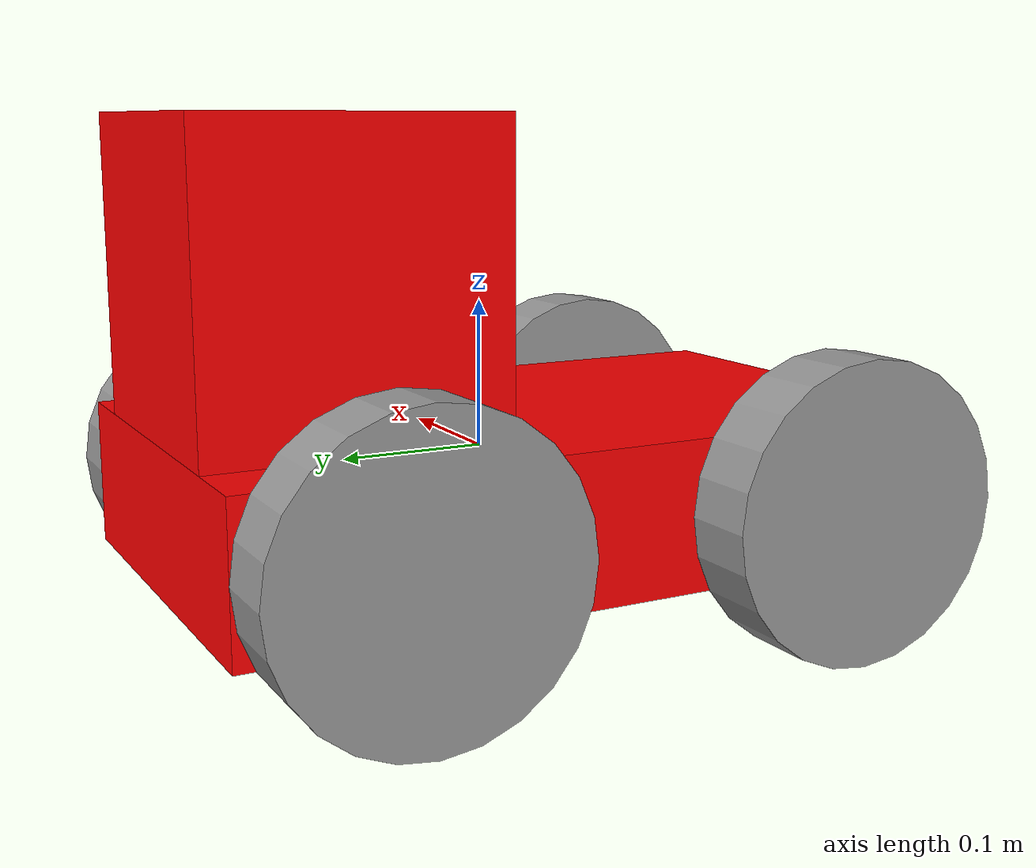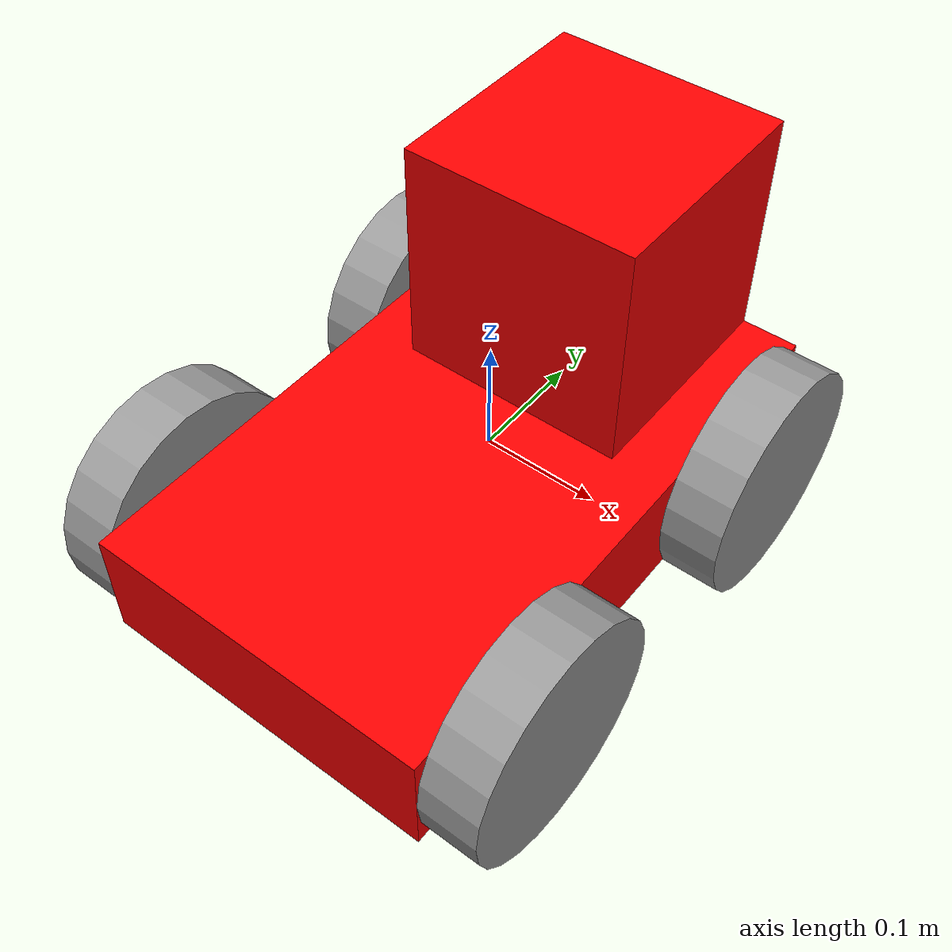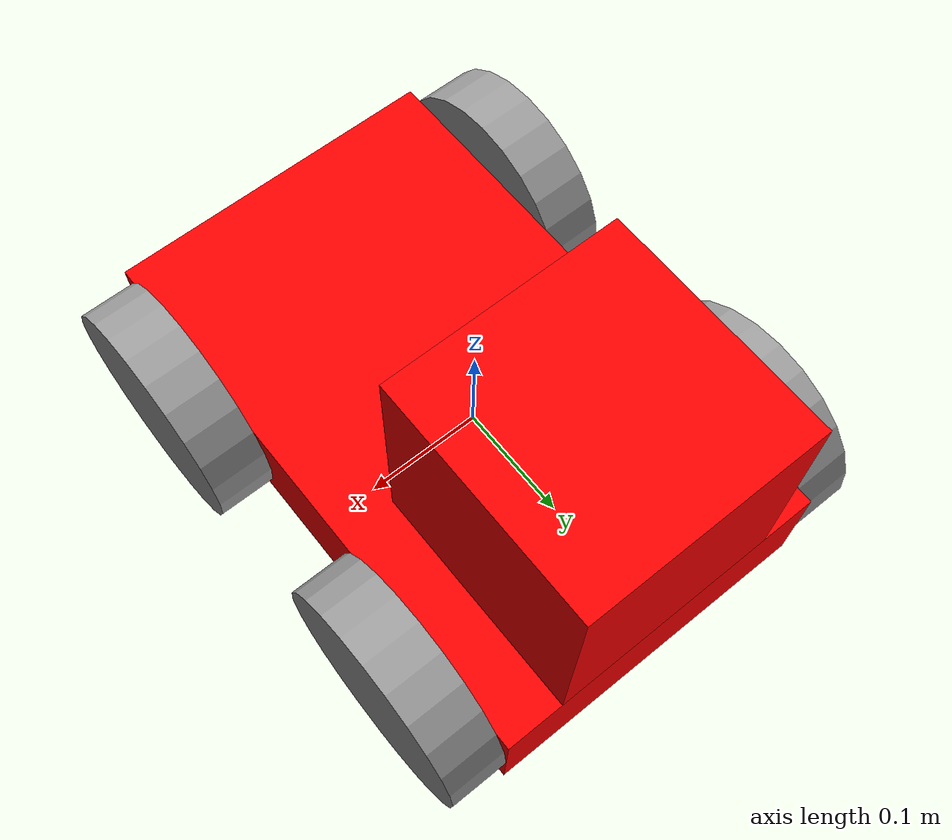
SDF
<?xml version='1.0'?>
<sdf version='1.6'>
  <model name='RobotCar'>
    <link name='link_0_clone'>
      <pose frame=''>-0 -0.025 -0.025 0 -0 0</pose>
      <inertial>
        <mass>0.5</mass>
        <inertia>
          <ixx>0.166667</ixx>
          <ixy>0</ixy>
          <ixz>0</ixz>
          <iyy>0.166667</iyy>
          <iyz>0</iyz>
          <izz>0.166667</izz>
        </inertia>
        <pose frame=''>0 0 0 0 -0 0</pose>
      </inertial>
      <self_collide>0</self_collide>
      <kinematic>0</kinematic>
      <gravity>1</gravity>
      <visual name='visual'>
        <pose frame=''>0 0 0 0 -0 0</pose>
        <geometry>
          <box>
            <size>0.3 0.5 0.1</size>
          </box>
        </geometry>
        <material>
          <lighting>1</lighting>
          <script>
            <uri>file://media/materials/scripts/gazebo.material</uri>
            <name>Gazebo/Grey</name>
          </script>
          <shader type='pixel'>
            <normal_map>__default__</normal_map>
          </shader>
          <ambient>1 0 0 1</ambient>
          <diffuse>0.7 0.7 0.7 1</diffuse>
          <specular>0.01 0.01 0.01 1</specular>
          <emissive>0 0 0 1</emissive>
        </material>
        <transparency>0</transparency>
        <cast_shadows>1</cast_shadows>
      </visual>
      <collision name='collision'>
        <laser_retro>0</laser_retro>
        <max_contacts>10</max_contacts>
        <pose frame=''>0 0 0 0 -0 0</pose>
        <geometry>
          <box>
            <size>0.3 0.5 0.1</size>
          </box>
        </geometry>
        <surface>
          <friction>
            <ode>
              <mu>1</mu>
              <mu2>1</mu2>
              <fdir1>0 0 0</fdir1>
              <slip1>0</slip1>
              <slip2>0</slip2>
            </ode>
            <torsional>
              <coefficient>1</coefficient>
              <patch_radius>0</patch_radius>
              <surface_radius>0</surface_radius>
              <use_patch_radius>1</use_patch_radius>
              <ode>
                <slip>0</slip>
              </ode>
            </torsional>
          </friction>
          <bounce>
            <restitution_coefficient>0</restitution_coefficient>
            <threshold>1e+06</threshold>
          </bounce>
          <contact>
            <collide_without_contact>0</collide_without_contact>
            <collide_without_contact_bitmask>1</collide_without_contact_bitmask>
            <collide_bitmask>1</collide_bitmask>
            <ode>
              <soft_cfm>0</soft_cfm>
              <soft_erp>0.2</soft_erp>
              <kp>1e+13</kp>
              <kd>1</kd>
              <max_vel>0.01</max_vel>
              <min_depth>0</min_depth>
            </ode>
            <bullet>
              <split_impulse>1</split_impulse>
              <split_impulse_penetration_threshold>-0.01</split_impulse_penetration_threshold>
              <soft_cfm>0</soft_cfm>
              <soft_erp>0.2</soft_erp>
              <kp>1e+13</kp>
              <kd>1</kd>
            </bullet>
          </contact>
        </surface>
      </collision>
    </link>
    <link name='link_4_clone'>
      <pose frame=''>-0.17508 0.124999 -0.025 0 -1.57 0</pose>
      <inertial>
        <mass>1</mass>
        <inertia>
          <ixx>0.145833</ixx>
          <ixy>0</ixy>
          <ixz>0</ixz>
          <iyy>0.145833</iyy>
          <iyz>0</iyz>
          <izz>0.125</izz>
        </inertia>
        <pose frame=''>0 0 0 0 -0 0</pose>
      </inertial>
      <self_collide>0</self_collide>
      <kinematic>0</kinematic>
      <visual name='visual'>
        <pose frame=''>0 0 0 0 -0 0</pose>
        <geometry>
          <cylinder>
            <radius>0.1</radius>
            <length>0.05</length>
          </cylinder>
        </geometry>
        <material>
          <lighting>1</lighting>
          <script>
            <uri>file://media/materials/scripts/gazebo.material</uri>
            <name>Gazebo/Grey</name>
          </script>
          <shader type='pixel'>
            <normal_map>__default__</normal_map>
          </shader>
          <ambient>0.3 0.3 0.3 1</ambient>
          <diffuse>0.7 0.7 0.7 1</diffuse>
          <specular>0.01 0.01 0.01 1</specular>
          <emissive>0 0 0 1</emissive>
        </material>
        <transparency>0</transparency>
        <cast_shadows>1</cast_shadows>
      </visual>
      <collision name='collision'>
        <laser_retro>0</laser_retro>
        <max_contacts>10</max_contacts>
        <pose frame=''>0 0 0 0 -0 0</pose>
        <geometry>
          <cylinder>
            <radius>0.1</radius>
            <length>0.05</length>
          </cylinder>
        </geometry>
        <surface>
          <friction>
            <ode>
              <mu>1</mu>
              <mu2>1</mu2>
              <fdir1>0 0 0</fdir1>
              <slip1>0</slip1>
              <slip2>0</slip2>
            </ode>
            <torsional>
              <coefficient>1</coefficient>
              <patch_radius>0</patch_radius>
              <surface_radius>0</surface_radius>
              <use_patch_radius>1</use_patch_radius>
              <ode>
                <slip>0</slip>
              </ode>
            </torsional>
          </friction>
          <bounce>
            <restitution_coefficient>0</restitution_coefficient>
            <threshold>1e+06</threshold>
          </bounce>
          <contact>
            <collide_without_contact>0</collide_without_contact>
            <collide_without_contact_bitmask>1</collide_without_contact_bitmask>
            <collide_bitmask>1</collide_bitmask>
            <ode>
              <soft_cfm>0</soft_cfm>
              <soft_erp>0.2</soft_erp>
              <kp>1e+13</kp>
              <kd>1</kd>
              <max_vel>0.01</max_vel>
              <min_depth>0</min_depth>
            </ode>
            <bullet>
              <split_impulse>1</split_impulse>
              <split_impulse_penetration_threshold>-0.01</split_impulse_penetration_threshold>
              <soft_cfm>0</soft_cfm>
              <soft_erp>0.2</soft_erp>
              <kp>1e+13</kp>
              <kd>1</kd>
            </bullet>
          </contact>
        </surface>
      </collision>
    </link>
    <link name='link_4_clone_clone'>
      <pose frame=''>0.17508 0.124999 -0.025 0 -1.57 0</pose>
      <inertial>
        <mass>1</mass>
        <inertia>
          <ixx>0.145833</ixx>
          <ixy>0</ixy>
          <ixz>0</ixz>
          <iyy>0.145833</iyy>
          <iyz>0</iyz>
          <izz>0.125</izz>
        </inertia>
        <pose frame=''>0 0 0 0 -0 0</pose>
      </inertial>
      <self_collide>0</self_collide>
      <kinematic>0</kinematic>
      <visual name='visual'>
        <pose frame=''>0 0 0 0 -0 0</pose>
        <geometry>
          <cylinder>
            <radius>0.1</radius>
            <length>0.05</length>
          </cylinder>
        </geometry>
        <material>
          <lighting>1</lighting>
          <script>
            <uri>file://media/materials/scripts/gazebo.material</uri>
            <name>Gazebo/Grey</name>
          </script>
          <shader type='pixel'>
            <normal_map>__default__</normal_map>
          </shader>
          <ambient>0.3 0.3 0.3 1</ambient>
          <diffuse>0.7 0.7 0.7 1</diffuse>
          <specular>0.01 0.01 0.01 1</specular>
          <emissive>0 0 0 1</emissive>
        </material>
        <transparency>0</transparency>
        <cast_shadows>1</cast_shadows>
      </visual>
      <collision name='collision'>
        <laser_retro>0</laser_retro>
        <max_contacts>10</max_contacts>
        <pose frame=''>0 0 0 0 -0 0</pose>
        <geometry>
          <cylinder>
            <radius>0.1</radius>
            <length>0.05</length>
          </cylinder>
        </geometry>
        <surface>
          <friction>
            <ode>
              <mu>1</mu>
              <mu2>1</mu2>
              <fdir1>0 0 0</fdir1>
              <slip1>0</slip1>
              <slip2>0</slip2>
            </ode>
            <torsional>
              <coefficient>1</coefficient>
              <patch_radius>0</patch_radius>
              <surface_radius>0</surface_radius>
              <use_patch_radius>1</use_patch_radius>
              <ode>
                <slip>0</slip>
              </ode>
            </torsional>
          </friction>
          <bounce>
            <restitution_coefficient>0</restitution_coefficient>
            <threshold>1e+06</threshold>
          </bounce>
          <contact>
            <collide_without_contact>0</collide_without_contact>
            <collide_without_contact_bitmask>1</collide_without_contact_bitmask>
            <collide_bitmask>1</collide_bitmask>
            <ode>
              <soft_cfm>0</soft_cfm>
              <soft_erp>0.2</soft_erp>
              <kp>1e+13</kp>
              <kd>1</kd>
              <max_vel>0.01</max_vel>
              <min_depth>0</min_depth>
            </ode>
            <bullet>
              <split_impulse>1</split_impulse>
              <split_impulse_penetration_threshold>-0.01</split_impulse_penetration_threshold>
              <soft_cfm>0</soft_cfm>
              <soft_erp>0.2</soft_erp>
              <kp>1e+13</kp>
              <kd>1</kd>
            </bullet>
          </contact>
        </surface>
      </collision>
    </link>
    <link name='link_4_clone_clone_0'>
      <pose frame=''>0.17508 -0.175 -0.025 0 -1.57 0</pose>
      <inertial>
        <mass>1</mass>
        <inertia>
          <ixx>0.145833</ixx>
          <ixy>0</ixy>
          <ixz>0</ixz>
          <iyy>0.145833</iyy>
          <iyz>0</iyz>
          <izz>0.125</izz>
        </inertia>
        <pose frame=''>0 0 0 0 -0 0</pose>
      </inertial>
      <self_collide>0</self_collide>
      <kinematic>0</kinematic>
      <visual name='visual'>
        <pose frame=''>0 0 0 0 -0 0</pose>
        <geometry>
          <cylinder>
            <radius>0.1</radius>
            <length>0.05</length>
          </cylinder>
        </geometry>
        <material>
          <lighting>1</lighting>
          <script>
            <uri>file://media/materials/scripts/gazebo.material</uri>
            <name>Gazebo/Grey</name>
          </script>
          <shader type='pixel'>
            <normal_map>__default__</normal_map>
          </shader>
          <ambient>0.3 0.3 0.3 1</ambient>
          <diffuse>0.7 0.7 0.7 1</diffuse>
          <specular>0.01 0.01 0.01 1</specular>
          <emissive>0 0 0 1</emissive>
        </material>
        <transparency>0</transparency>
        <cast_shadows>1</cast_shadows>
      </visual>
      <collision name='collision'>
        <laser_retro>0</laser_retro>
        <max_contacts>10</max_contacts>
        <pose frame=''>0 0 0 0 -0 0</pose>
        <geometry>
          <cylinder>
            <radius>0.1</radius>
            <length>0.05</length>
          </cylinder>
        </geometry>
        <surface>
          <friction>
            <ode>
              <mu>1</mu>
              <mu2>1</mu2>
              <fdir1>0 0 0</fdir1>
              <slip1>0</slip1>
              <slip2>0</slip2>
            </ode>
            <torsional>
              <coefficient>1</coefficient>
              <patch_radius>0</patch_radius>
              <surface_radius>0</surface_radius>
              <use_patch_radius>1</use_patch_radius>
              <ode>
                <slip>0</slip>
              </ode>
            </torsional>
          </friction>
          <bounce>
            <restitution_coefficient>0</restitution_coefficient>
            <threshold>1e+06</threshold>
          </bounce>
          <contact>
            <collide_without_contact>0</collide_without_contact>
            <collide_without_contact_bitmask>1</collide_without_contact_bitmask>
            <collide_bitmask>1</collide_bitmask>
            <ode>
              <soft_cfm>0</soft_cfm>
              <soft_erp>0.2</soft_erp>
              <kp>1e+13</kp>
              <kd>1</kd>
              <max_vel>0.01</max_vel>
              <min_depth>0</min_depth>
            </ode>
            <bullet>
              <split_impulse>1</split_impulse>
              <split_impulse_penetration_threshold>-0.01</split_impulse_penetration_threshold>
              <soft_cfm>0</soft_cfm>
              <soft_erp>0.2</soft_erp>
              <kp>1e+13</kp>
              <kd>1</kd>
            </bullet>
          </contact>
        </surface>
      </collision>
    </link>
    <link name='link_4_clone_clone_1'>
      <pose frame=''>-0.17508 -0.175 -0.025 0 -1.57 0</pose>
      <inertial>
        <mass>1</mass>
        <inertia>
          <ixx>0.145833</ixx>
          <ixy>0</ixy>
          <ixz>0</ixz>
          <iyy>0.145833</iyy>
          <iyz>0</iyz>
          <izz>0.125</izz>
        </inertia>
        <pose frame=''>0 0 0 0 -0 0</pose>
      </inertial>
      <self_collide>0</self_collide>
      <kinematic>0</kinematic>
      <visual name='visual'>
        <pose frame=''>0 0 0 0 -0 0</pose>
        <geometry>
          <cylinder>
            <radius>0.1</radius>
            <length>0.05</length>
          </cylinder>
        </geometry>
        <material>
          <lighting>1</lighting>
          <script>
            <uri>file://media/materials/scripts/gazebo.material</uri>
            <name>Gazebo/Grey</name>
          </script>
          <shader type='pixel'>
            <normal_map>__default__</normal_map>
          </shader>
          <ambient>0.3 0.3 0.3 1</ambient>
          <diffuse>0.7 0.7 0.7 1</diffuse>
          <specular>0.01 0.01 0.01 1</specular>
          <emissive>0 0 0 1</emissive>
        </material>
        <transparency>0</transparency>
        <cast_shadows>1</cast_shadows>
      </visual>
      <collision name='collision'>
        <laser_retro>0</laser_retro>
        <max_contacts>10</max_contacts>
        <pose frame=''>0 0 0 0 -0 0</pose>
        <geometry>
          <cylinder>
            <radius>0.1</radius>
            <length>0.05</length>
          </cylinder>
        </geometry>
        <surface>
          <friction>
            <ode>
              <mu>1</mu>
              <mu2>1</mu2>
              <fdir1>0 0 0</fdir1>
              <slip1>0</slip1>
              <slip2>0</slip2>
            </ode>
            <torsional>
              <coefficient>1</coefficient>
              <patch_radius>0</patch_radius>
              <surface_radius>0</surface_radius>
              <use_patch_radius>1</use_patch_radius>
              <ode>
                <slip>0</slip>
              </ode>
            </torsional>
          </friction>
          <bounce>
            <restitution_coefficient>0</restitution_coefficient>
            <threshold>1e+06</threshold>
          </bounce>
          <contact>
            <collide_without_contact>0</collide_without_contact>
            <collide_without_contact_bitmask>1</collide_without_contact_bitmask>
            <collide_bitmask>1</collide_bitmask>
            <ode>
              <soft_cfm>0</soft_cfm>
              <soft_erp>0.2</soft_erp>
              <kp>1e+13</kp>
              <kd>1</kd>
              <max_vel>0.01</max_vel>
              <min_depth>0</min_depth>
            </ode>
            <bullet>
              <split_impulse>1</split_impulse>
              <split_impulse_penetration_threshold>-0.01</split_impulse_penetration_threshold>
              <soft_cfm>0</soft_cfm>
              <soft_erp>0.2</soft_erp>
              <kp>1e+13</kp>
              <kd>1</kd>
            </bullet>
          </contact>
        </surface>
      </collision>
    </link>
    <link name='link_5_clone'>
      <pose frame=''>0 0.125 0.125 0 -0 0</pose>
      <inertial>
        <mass>0.2</mass>
        <inertia>
          <ixx>1</ixx>
          <ixy>0</ixy>
          <ixz>0</ixz>
          <iyy>1</iyy>
          <iyz>0</iyz>
          <izz>1</izz>
        </inertia>
        <pose frame=''>0 0 0 0 -0 0</pose>
      </inertial>
      <self_collide>0</self_collide>
      <kinematic>0</kinematic>
      <gravity>1</gravity>
      <visual name='visual'>
        <pose frame=''>0 0 0 0 -0 0</pose>
        <geometry>
          <box>
            <size>0.2 0.2 0.2</size>
          </box>
        </geometry>
        <material>
          <lighting>1</lighting>
          <script>
            <uri>file://media/materials/scripts/gazebo.material</uri>
            <name>Gazebo/Grey</name>
          </script>
          <shader type='pixel'>
            <normal_map>__default__</normal_map>
          </shader>
          <ambient>1 0 0 1</ambient>
          <diffuse>0.7 0.7 0.7 1</diffuse>
          <specular>0.01 0.01 0.01 1</specular>
          <emissive>0 0 0 1</emissive>
        </material>
        <transparency>0</transparency>
        <cast_shadows>1</cast_shadows>
      </visual>
      <collision name='collision'>
        <laser_retro>0</laser_retro>
        <max_contacts>10</max_contacts>
        <pose frame=''>0 0 0 0 -0 0</pose>
        <geometry>
          <box>
            <size>0.2 0.2 0.2</size>
          </box>
        </geometry>
        <surface>
          <friction>
            <ode>
              <mu>1</mu>
              <mu2>1</mu2>
              <fdir1>0 0 0</fdir1>
              <slip1>0</slip1>
              <slip2>0</slip2>
            </ode>
            <torsional>
              <coefficient>1</coefficient>
              <patch_radius>0</patch_radius>
              <surface_radius>0</surface_radius>
              <use_patch_radius>1</use_patch_radius>
              <ode>
                <slip>0</slip>
              </ode>
            </torsional>
          </friction>
          <bounce>
            <restitution_coefficient>0</restitution_coefficient>
            <threshold>1e+06</threshold>
          </bounce>
          <contact>
            <collide_without_contact>0</collide_without_contact>
            <collide_without_contact_bitmask>1</collide_without_contact_bitmask>
            <collide_bitmask>1</collide_bitmask>
            <ode>
              <soft_cfm>0</soft_cfm>
              <soft_erp>0.2</soft_erp>
              <kp>1e+13</kp>
              <kd>1</kd>
              <max_vel>0.01</max_vel>
              <min_depth>0</min_depth>
            </ode>
            <bullet>
              <split_impulse>1</split_impulse>
              <split_impulse_penetration_threshold>-0.01</split_impulse_penetration_threshold>
              <soft_cfm>0</soft_cfm>
              <soft_erp>0.2</soft_erp>
              <kp>1e+13</kp>
              <kd>1</kd>
            </bullet>
          </contact>
        </surface>
      </collision>
    </link>
    <joint name='link_0_clone_JOINT_10' type='revolute'>
      <parent>link_0_clone</parent>
      <child>link_4_clone_clone_0</child>
      <pose frame=''>0 0 0 0 -0 0</pose>
      <axis>
        <xyz>0 0 1</xyz>
        <use_parent_model_frame>0</use_parent_model_frame>
        <limit>
          <lower>-1.79769e+308</lower>
          <upper>1.79769e+308</upper>
          <effort>-1</effort>
          <velocity>-1</velocity>
        </limit>
        <dynamics>
          <spring_reference>0</spring_reference>
          <spring_stiffness>0</spring_stiffness>
          <damping>0</damping>
          <friction>0</friction>
        </dynamics>
      </axis>
      <physics>
        <ode>
          <limit>
            <cfm>0</cfm>
            <erp>0.2</erp>
          </limit>
          <suspension>
            <cfm>0</cfm>
            <erp>0.2</erp>
          </suspension>
        </ode>
      </physics>
    </joint>
    <joint name='link_0_clone_JOINT_11' type='fixed'>
      <parent>link_0_clone</parent>
      <child>link_5_clone</child>
      <pose frame=''>0 0 0 0 -0 0</pose>
      <physics>
        <ode>
          <limit>
            <cfm>0</cfm>
            <erp>0.2</erp>
          </limit>
          <suspension>
            <cfm>0</cfm>
            <erp>0.2</erp>
          </suspension>
        </ode>
      </physics>
    </joint>
    <joint name='link_0_clone_JOINT_7' type='revolute'>
      <parent>link_0_clone</parent>
      <child>link_4_clone_clone_1</child>
      <pose frame=''>0 0 0 0 -0 0</pose>
      <axis>
        <xyz>0 0 1</xyz>
        <use_parent_model_frame>0</use_parent_model_frame>
        <limit>
          <lower>-1.79769e+308</lower>
          <upper>1.79769e+308</upper>
          <effort>-1</effort>
          <velocity>-1</velocity>
        </limit>
        <dynamics>
          <spring_reference>0</spring_reference>
          <spring_stiffness>0</spring_stiffness>
          <damping>0</damping>
          <friction>0</friction>
        </dynamics>
      </axis>
      <physics>
        <ode>
          <limit>
            <cfm>0</cfm>
            <erp>0.2</erp>
          </limit>
          <suspension>
            <cfm>0</cfm>
            <erp>0.2</erp>
          </suspension>
        </ode>
      </physics>
    </joint>
    <joint name='link_0_clone_JOINT_8' type='revolute'>
      <parent>link_0_clone</parent>
      <child>link_4_clone</child>
      <pose frame=''>0 0 0 0 -0 0</pose>
      <axis>
        <xyz>0 0 1</xyz>
        <use_parent_model_frame>0</use_parent_model_frame>
        <limit>
          <lower>-1.79769e+308</lower>
          <upper>1.79769e+308</upper>
          <effort>-1</effort>
          <velocity>-1</velocity>
        </limit>
        <dynamics>
          <spring_reference>0</spring_reference>
          <spring_stiffness>0</spring_stiffness>
          <damping>0</damping>
          <friction>0</friction>
        </dynamics>
      </axis>
      <physics>
        <ode>
          <limit>
            <cfm>0</cfm>
            <erp>0.2</erp>
          </limit>
          <suspension>
            <cfm>0</cfm>
            <erp>0.2</erp>
          </suspension>
        </ode>
      </physics>
    </joint>
    <joint name='link_0_clone_JOINT_9' type='revolute'>
      <parent>link_0_clone</parent>
      <child>link_4_clone_clone</child>
      <pose frame=''>0 0 0 0 -0 0</pose>
      <axis>
        <xyz>0 0 1</xyz>
        <use_parent_model_frame>0</use_parent_model_frame>
        <limit>
          <lower>-1.79769e+308</lower>
          <upper>1.79769e+308</upper>
          <effort>-1</effort>
          <velocity>-1</velocity>
        </limit>
        <dynamics>
          <spring_reference>0</spring_reference>
          <spring_stiffness>0</spring_stiffness>
          <damping>0</damping>
          <friction>0</friction>
        </dynamics>
      </axis>
      <physics>
        <ode>
          <limit>
            <cfm>0</cfm>
            <erp>0.2</erp>
          </limit>
          <suspension>
            <cfm>0</cfm>
            <erp>0.2</erp>
          </suspension>
        </ode>
      </physics>
    </joint>
    <static>0</static>
    <allow_auto_disable>1</allow_auto_disable>
  </model>
</sdf>
